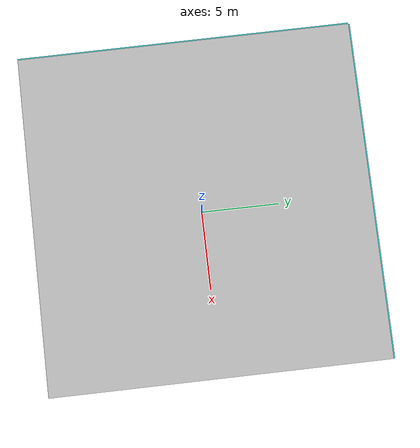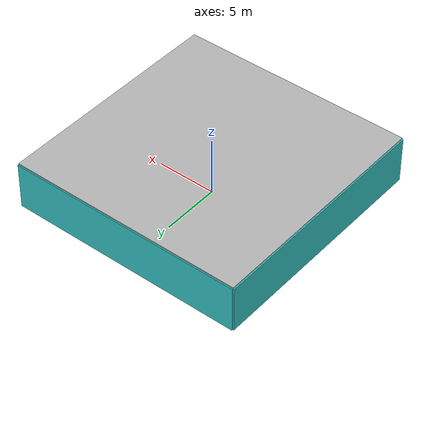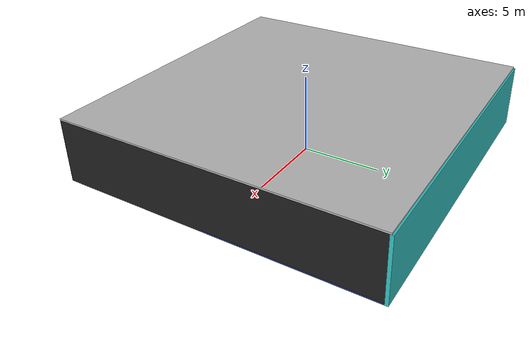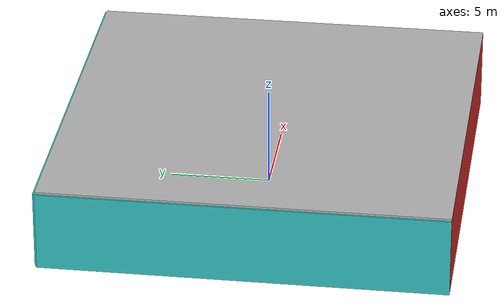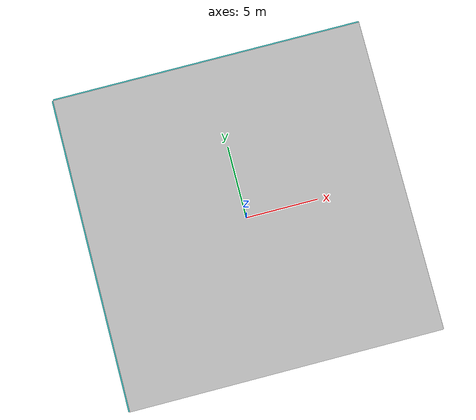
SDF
<sdf version="1.4">
 <world name="default">
  <physics type="ode">
   <max_step_size>0.001</max_step_size>
   <real_time_factor>1</real_time_factor>
   <real_time_update_rate>1000</real_time_update_rate>
   <gravity>0 0 -9.8</gravity>
  </physics>
  <scene><ambient>0.4 0.4 0.4 1</ambient><background>0.7 0.7 0.7 1</background><shadows>1</shadows></scene>
  <model name="Surrounding">
   <static>1</static>
   <link name="Ceiling">
    <collision name="Ceiling_Collision"><geometry><box><size>20 20 0.1</size></box></geometry></collision>
    <visual name="Ceiling_Visual">
     <geometry><box><size>20 20 0.1</size></box></geometry>
     <material>
      <script><uri>file://media/materials/scripts/gazebo.material</uri><name>Gazebo/Pioneer2Body</name></script>
     </material>
    </visual>
    <pose>0 0 4.05 0 0 0</pose>
   </link>
   <link name="Wall_South">
    <collision name="Wall_South_Collision">
     <geometry><box><size>20 0 4</size></box></geometry>
     <pose>0 0 2 0 -0 0</pose>
    </collision>
    <visual name="Wall_South_Visual">
     <pose>0 0 2 0 -0 0</pose>
     <geometry><box><size>20 0 4</size></box></geometry>
     <material>
      <script><uri>file://media/materials/scripts/gazebo.material</uri><name>Gazebo/RedGlow</name></script>
     </material>
    </visual>
    <velocity_decay><linear>0</linear><angular>0</angular></velocity_decay>
    <pose>0 -10 0 0 -0 0</pose>
   </link>
   <link name="Wall_East">
    <collision name="Wall_21_Collision">
     <geometry><box><size>20 0 4</size></box></geometry>
     <pose>0 0 2 0 -0 0</pose>
    </collision>
    <visual name="Wall_21_Visual">
     <pose>0 0 2 0 -0 0</pose>
     <geometry><box><size>20 0 4</size></box></geometry>
     <material>
      <script><uri>file://media/materials/scripts/gazebo.material</uri><name>Gazebo/FlatBlack</name></script>
     </material>
    </visual>
    <velocity_decay><linear>0</linear><angular>0</angular></velocity_decay>
    <pose>10 0 0 0 -0 1.5708</pose>
   </link>
   <link name="Wall_North">
    <collision name="Wall_22_Collision">
     <geometry><box><size>20 0.2 4</size></box></geometry>
     <pose>0 0 2 0 -0 0</pose>
    </collision>
    <visual name="Wall_22_Visual">
     <pose>0 0 2 0 -0 0</pose>
     <geometry><box><size>20 0.2 4</size></box></geometry>
     <material>
      <script>
       <uri>file://media/materials/scripts/gazebo.material</uri>
       <name>Gazebo/TurquoiseGlowOutline</name>
      </script>
     </material>
    </visual>
    <velocity_decay><linear>0</linear><angular>0</angular></velocity_decay>
    <pose>0 10 0 0 -0 0</pose>
   </link>
   <link name="Wall_West">
    <collision name="Wall_23_Collision">
     <geometry><box><size>20 0.2 4</size></box></geometry>
     <pose>0 0 2 0 -0 0</pose>
    </collision>
    <visual name="Wall_23_Visual">
     <pose>0 0 2 0 -0 0</pose>
     <geometry><box><size>20 0.2 4</size></box></geometry>
     <material>
      <script><uri>file://media/materials/scripts/gazebo.material</uri><name>Gazebo/TurquoiseGlow</name></script>
     </material>
    </visual>
    <velocity_decay><linear>0</linear><angular>0</angular></velocity_decay>
    <pose>-10 0 0 0 0 -1.5708</pose>
   </link>
   <link name="Ground_link">
    <collision name="collision">
     <pose>0 0 .05 0 -0 0</pose>
     <geometry><box><size>20 20 0.1</size></box></geometry>
    </collision>
    <visual name="visual">
     <pose>0 0 .05 0 -0 0</pose>
     <geometry><box><size>20 20 0.1</size></box></geometry>
     <material>
      <script><uri>file://media/materials/scripts/gazebo.material</uri><name>Gazebo/BlueTransparent</name></script>
     </material>
    </visual>
   </link>
   <static>1</static>
  </model>
  <spherical_coordinates>
   <surface_model>EARTH_WGS84</surface_model>
   <latitude_deg>0</latitude_deg>
   <longitude_deg>0</longitude_deg>
   <elevation>0</elevation>
   <heading_deg>0</heading_deg>
  </spherical_coordinates>
  <light name="lightball_0" type="diffuse">
   <diffuse>0.8 0.8 0.8 1</diffuse>
   <specular>0.2 0.2 0.2 1</specular>
   <attenuation>
    <range>100</range>
    <constant>0.7</constant>
    <linear>0.01</linear>
    <quadratic>0.001</quadratic>
   </attenuation>
   <direction>-0.5 0.1 -0.9</direction>
   <pose>8.90668147827 -5.09057142628 0.750233153296 0 0 0</pose>
  </light>
  <light name="lightball_1" type="diffuse">
   <diffuse>0.8 0.8 0.8 1</diffuse>
   <specular>0.2 0.2 0.2 1</specular>
   <attenuation>
    <range>100</range>
    <constant>0.7</constant>
    <linear>0.01</linear>
    <quadratic>0.001</quadratic>
   </attenuation>
   <direction>-0.5 0.1 -0.9</direction>
   <pose>4.02187072347 5.81936554982 0.816397627398 0 0 0</pose>
  </light>
  <light name="lightball_2" type="diffuse">
   <diffuse>0.8 0.8 0.8 1</diffuse>
   <specular>0.2 0.2 0.2 1</specular>
   <attenuation>
    <range>100</range>
    <constant>0.7</constant>
    <linear>0.01</linear>
    <quadratic>0.001</quadratic>
   </attenuation>
   <direction>-0.5 0.1 -0.9</direction>
   <pose>-7.77488024568 -4.04077266282 2.04553541518 0 0 0</pose>
  </light>
  <light name="lightball_3" type="diffuse">
   <diffuse>0.8 0.8 0.8 1</diffuse>
   <specular>0.2 0.2 0.2 1</specular>
   <attenuation>
    <range>100</range>
    <constant>0.7</constant>
    <linear>0.01</linear>
    <quadratic>0.001</quadratic>
   </attenuation>
   <direction>-0.5 0.1 -0.9</direction>
   <pose>-4.18570654642 4.79087631984 1.49130211269 0 0 0</pose>
  </light>
  <light name="lightball_4" type="diffuse">
   <diffuse>0.8 0.8 0.8 1</diffuse>
   <specular>0.2 0.2 0.2 1</specular>
   <attenuation>
    <range>100</range>
    <constant>0.7</constant>
    <linear>0.01</linear>
    <quadratic>0.001</quadratic>
   </attenuation>
   <direction>-0.5 0.1 -0.9</direction>
   <pose>-8.69708978196 4.67667689843 0.936487295681 0 0 0</pose>
  </light>
  <light name="lightball_5" type="diffuse">
   <diffuse>0.8 0.8 0.8 1</diffuse>
   <specular>0.2 0.2 0.2 1</specular>
   <attenuation>
    <range>100</range>
    <constant>0.7</constant>
    <linear>0.01</linear>
    <quadratic>0.001</quadratic>
   </attenuation>
   <direction>-0.5 0.1 -0.9</direction>
   <pose>-7.94949062971 -0.945219456987 3.41697881551 0 0 0</pose>
  </light>
  <include>
   <uri>model://textured_shapes</uri>
   <pose>-8.157661633 -7.50356209092 0 0 0 0.197594822659</pose>
  </include>
  <include><uri>model://table</uri><pose>-3.97705370807 -5.65520470283 0 0 0 1.11128965588</pose></include>
  <include>
   <uri>model://construction_cone</uri>
   <pose>-2.4661465377 -8.22033066131 0 0 0 2.46245571593</pose>
  </include>
 </world>
</sdf>

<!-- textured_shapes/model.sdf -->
<sdf version="1.6">
  <model name="textured_shapes">
    <pose>0 0 0.5 0 0 0</pose>
    <link name="box">
      <pose>0 -1.5 0 0 0 0</pose>
      <collision name="collision">
        <geometry>
          <box>
            <size>1 1 1</size>
          </box>
        </geometry>
      </collision>
      <visual name="visual">
        <geometry>
          <box>
            <size>1 1 1</size>
          </box>
        </geometry>
        <material>
          <script>
            <uri>model://../model_source/models/textured_shapes/materials/scripts</uri>
            <uri>model://../model_source/models/textured_shapes/materials/textures</uri>
            <name>TexturedShape/Squares</name>
          </script>
        </material>
      </visual>
    </link>
    <link name="sphere">
      <collision name="collision">
        <geometry>
          <sphere>
            <radius>0.5</radius>
          </sphere>
        </geometry>
      </collision>
      <visual name="visual">
        <geometry>
          <sphere>
            <radius>0.5</radius>
          </sphere>
        </geometry>
        <material>
          <script>
            <uri>model://../model_source/models/textured_shapes/materials/scripts</uri>
            <uri>model://../model_source/models/textured_shapes/materials/textures</uri>
            <name>TexturedShape/Squares</name>
          </script>
        </material>
      </visual>
    </link>
    <link name="cylinder">
      <pose>0 1.5 0 0 0 0</pose>
      <collision name="collision">
        <geometry>
          <cylinder>
            <radius>0.5</radius>
            <length>1</length>
          </cylinder>
        </geometry>
      </collision>
      <visual name="visual">
        <geometry>
          <cylinder>
            <radius>0.5</radius>
            <length>1</length>
          </cylinder>
        </geometry>
        <material>
          <script>
            <uri>model://../model_source/models/textured_shapes/materials/scripts</uri>
            <uri>model://../model_source/models/textured_shapes/materials/textures</uri>
            <name>TexturedShape/Squares</name>
          </script>
        </material>
      </visual>
    </link>
  </model>
</sdf>

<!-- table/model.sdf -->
<sdf version="1.5">
  <model name="table">
    <static>true</static>
    <link name="link">
      <collision name="surface">
        <pose>0 0 1.0 0 0 0</pose>
        <geometry>
          <box>
            <size>1.5 0.8 0.03</size>
          </box>
        </geometry>
        <surface>
          <friction>
            <ode>
              <mu>0.6</mu>
              <mu2>0.6</mu2>
            </ode>
          </friction>
        </surface>
      </collision>
      <visual name="visual1">
        <pose>0 0 1.0 0 0 0</pose>
        <geometry>
          <box>
            <size>1.5 0.8 0.03</size>
          </box>
        </geometry>
        <material>
          <script>
            <uri>model://media/materials/scripts/gazebo.material</uri>
            <name>Gazebo/Wood</name>
          </script>
        </material>
      </visual>
      <collision name="front_left_leg">
        <pose>0.68 0.38 0.5 0 0 0</pose>
        <geometry>
          <cylinder>
            <radius>0.02</radius>
            <length>1.0</length>
          </cylinder>
        </geometry>
      </collision>
      <visual name="front_left_leg">
        <pose>0.68 0.38 0.5 0 0 0</pose>
        <geometry>
          <cylinder>
            <radius>0.02</radius>
            <length>1.0</length>
          </cylinder>
        </geometry>
        <material>
          <script>
            <uri>model://media/materials/scripts/gazebo.material</uri>
            <name>Gazebo/Grey</name>
          </script>
        </material>
      </visual>
      <collision name="front_right_leg">
        <pose>0.68 -0.38 0.5 0 0 0</pose>
        <geometry>
          <cylinder>
            <radius>0.02</radius>
            <length>1.0</length>
          </cylinder>
        </geometry>
      </collision>
      <visual name="front_right_leg">
        <pose>0.68 -0.38 0.5 0 0 0</pose>
        <geometry>
          <cylinder>
            <radius>0.02</radius>
            <length>1.0</length>
          </cylinder>
        </geometry>
        <material>
          <script>
            <uri>model://media/materials/scripts/gazebo.material</uri>
            <name>Gazebo/Grey</name>
          </script>
        </material>
      </visual>
      <collision name="back_right_leg">
        <pose>-0.68 -0.38 0.5 0 0 0</pose>
        <geometry>
          <cylinder>
            <radius>0.02</radius>
            <length>1.0</length>
          </cylinder>
        </geometry>
      </collision>
      <visual name="back_right_leg">
        <pose>-0.68 -0.38 0.5 0 0 0</pose>
        <geometry>
          <cylinder>
            <radius>0.02</radius>
            <length>1.0</length>
          </cylinder>
        </geometry>
        <material>
          <script>
            <uri>model://media/materials/scripts/gazebo.material</uri>
            <name>Gazebo/Grey</name>
          </script>
        </material>
      </visual>
      <collision name="back_left_leg">
        <pose>-0.68 0.38 0.5 0 0 0</pose>
        <geometry>
          <cylinder>
            <radius>0.02</radius>
            <length>1.0</length>
          </cylinder>
        </geometry>
      </collision>
      <visual name="back_left_leg">
        <pose>-0.68 0.38 0.5 0 0 0</pose>
        <geometry>
          <cylinder>
            <radius>0.02</radius>
            <length>1.0</length>
          </cylinder>
        </geometry>
        <material>
          <script>
            <uri>model://media/materials/scripts/gazebo.material</uri>
            <name>Gazebo/Grey</name>
          </script>
        </material>
      </visual>
    </link>
  </model>
</sdf>

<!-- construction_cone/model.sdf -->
<sdf version="1.5">
  <model name="Construction Cone">
    <link name="link">
      <collision name="collision">
        <geometry>
          <mesh>
            <scale>10 10 10</scale>
            <uri>file://isr-testbed/construction_cone/meshes/construction_cone.dae</uri>
          </mesh>
        </geometry>
      </collision>
      <visual name="visual">
        <geometry>
          <mesh>
            <scale>10 10 10</scale>
            <uri>file://isr-testbed/construction_cone/meshes/construction_cone.dae</uri>
          </mesh>
        </geometry>
      </visual>
    </link>
  </model>
</sdf>
